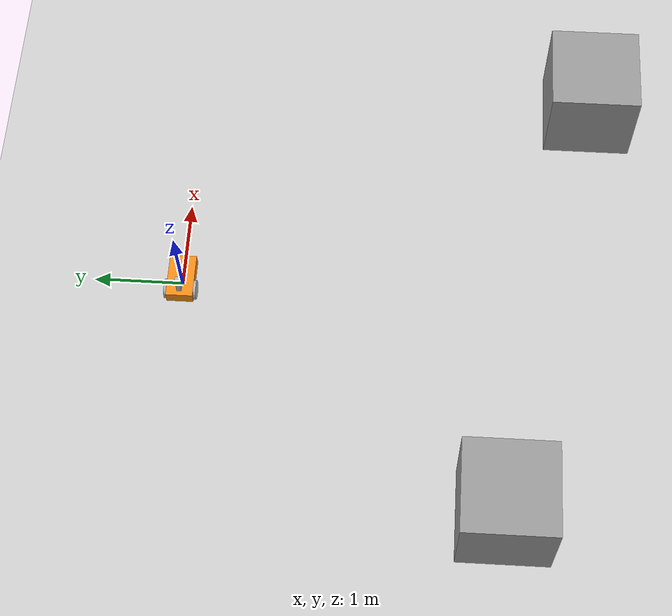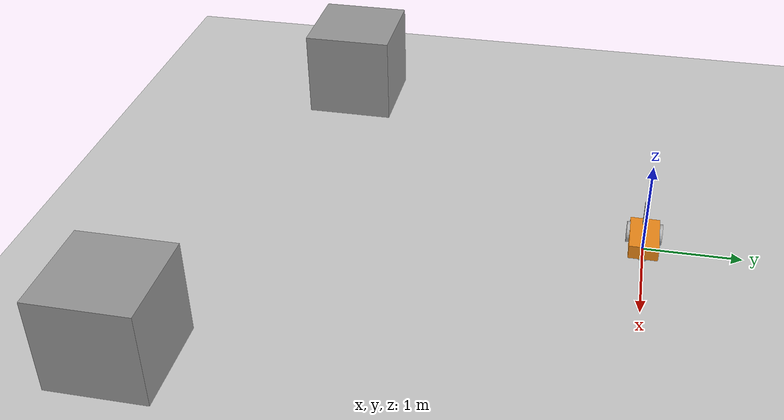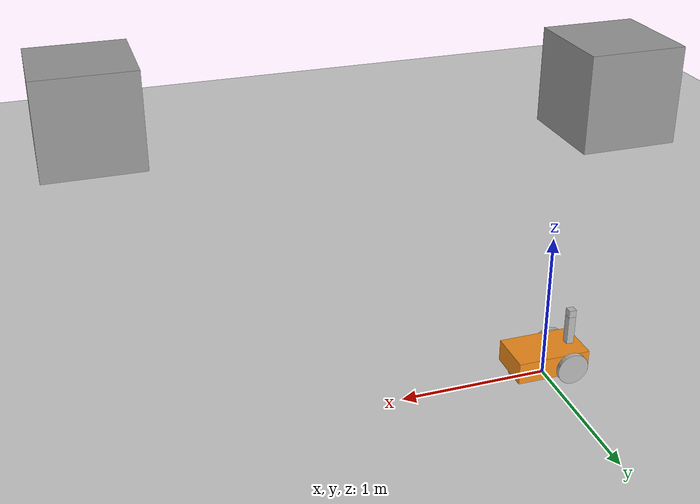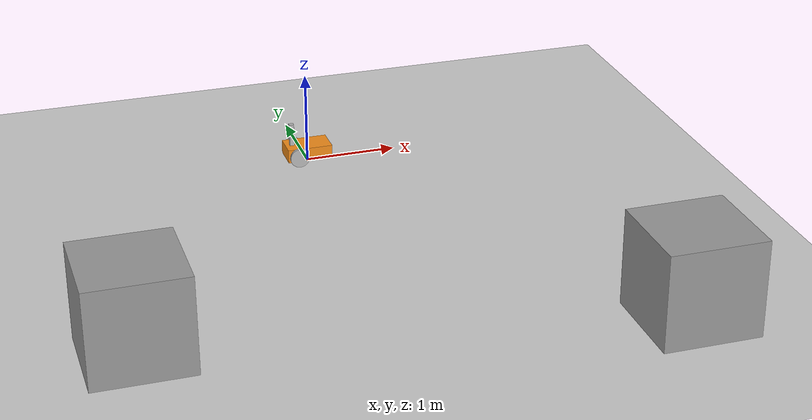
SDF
<sdf version="1.7">
 <world name="race-track-world">
  <model name="race_track">
   <static>1</static>
   <link name="link">
    <collision name="collision">
     <geometry><plane><normal>0 0 1</normal><size>50 50</size></plane></geometry>
     <surface><friction><ode><mu>100</mu><mu2>50</mu2></ode></friction></surface>
    </collision>
    <visual name="visual">
     <cast_shadows>0</cast_shadows>
     <geometry><plane><normal>0 0 1</normal><size>50 50</size></plane></geometry>
     <material>
      <script>
       <uri>model://race_track/materials/scripts</uri>
       <uri>model://race_track/materials/textures</uri>
       <name>race_track/Image</name>
      </script>
     </material>
    </visual>
   </link>
  </model>
  <light name="sun" type="directional">
   <pose>0 0 10 0 -0 0</pose>
   <diffuse>0.8 0.8 0.8 1</diffuse>
   <specular>0.2 0.2 0.2 1</specular>
   <attenuation>
    <range>1000</range>
    <constant>0.9</constant>
    <linear>0.01</linear>
    <quadratic>0.001</quadratic>
   </attenuation>
   <direction>-0.5 0.1 -0.9</direction>
   <spot><inner_angle>0</inner_angle><outer_angle>0</outer_angle><falloff>0</falloff></spot>
  </light>
  <physics name="ode_70iters" type="ode">
   <real_time_update_rate>1500</real_time_update_rate>
   <ode>
    <solver>
     <type>quick</type>
     <iters>70</iters>
     <sor>1.3</sor>
     <use_dynamic_moi_rescaling>0</use_dynamic_moi_rescaling>
    </solver>
    <constraints>
     <cfm>0</cfm>
     <erp>0.2</erp>
     <contact_max_correcting_vel>100</contact_max_correcting_vel>
     <contact_surface_layer>0.001</contact_surface_layer>
    </constraints>
   </ode>
   <max_step_size>0.001</max_step_size>
   <real_time_factor>1</real_time_factor>
  </physics>
  <gravity>0 0 -9.8</gravity>
  <magnetic_field>6e-06 2.3e-05 -4.2e-05</magnetic_field>
  <atmosphere type="adiabatic"/>
  <scene><ambient>0.4 0.4 0.4 1</ambient><background>0.7 0.7 0.7 1</background><shadows>1</shadows></scene>
  <spherical_coordinates>
   <surface_model>EARTH_WGS84</surface_model>
   <latitude_deg>0</latitude_deg>
   <longitude_deg>0</longitude_deg>
   <elevation>0</elevation>
   <heading_deg>0</heading_deg>
  </spherical_coordinates>
  <model name="diff_drive">
   <link name="base_link">
    <inertial>
     <mass>100</mass>
     <inertia>
      <ixx>0.937503</ixx>
      <ixy>0</ixy>
      <ixz>8.3125e-07</ixz>
      <iyy>2.27084</iyy>
      <iyz>0</iyz>
      <izz>2.27084</izz>
     </inertia>
    </inertial>
    <collision name="base_link_fixed_joint_lump__collision_collision">
     <geometry><box><size>0.5 0.3 0.15</size></box></geometry>
    </collision>
    <collision name="base_link_fixed_joint_lump__caster_collision_collision_1">
     <pose>0.19625 0 -0.075 0 -0 0</pose>
     <geometry><sphere><radius>0.05375</radius></sphere></geometry>
    </collision>
    <collision name="base_link_fixed_joint_lump__camera_support_link_collision_2">
     <pose>-0.175 0 0.175 0 -0 0</pose>
     <geometry><box><size>0.05 0.05 0.2</size></box></geometry>
    </collision>
    <collision name="base_link_fixed_joint_lump__camera_link_collision_3">
     <pose>-0.175 0 0.3 0 -0 3.14159</pose>
     <geometry><box><size>0.05 0.05 0.05</size></box></geometry>
    </collision>
    <visual name="base_link_visual_visual">
     <geometry><box><size>0.5 0.3 0.15</size></box></geometry>
     <material>
      <script><name>Gazebo/Orange</name><uri>file://media/materials/scripts/gazebo.material</uri></script>
     </material>
    </visual>
    <visual name="base_link_fixed_joint_lump__caster_visual_visual_1">
     <pose>0.19625 0 -0.075 0 -0 0</pose>
     <geometry><sphere><radius>0.05375</radius></sphere></geometry>
    </visual>
    <visual name="base_link_fixed_joint_lump__camera_support_link_visual_2">
     <pose>-0.175 0 0.175 0 -0 0</pose>
     <geometry><box><size>0.05 0.05 0.2</size></box></geometry>
    </visual>
    <visual name="base_link_fixed_joint_lump__camera_link_visual_3">
     <pose>-0.175 0 0.3 0 -0 3.14159</pose>
     <geometry><box><size>0.05 0.05 0.05</size></box></geometry>
    </visual>
    <sensor name="camera" type="camera">
     <update_rate>15</update_rate>
     <camera name="front">
      <horizontal_fov>1.39626</horizontal_fov>
      <image><width>320</width><height>240</height><format>R8G8B8</format></image>
      <clip><near>0.02</near><far>300</far></clip>
      <noise><type>gaussian</type><mean>0</mean><stddev>0.007</stddev></noise>
     </camera>
     <plugin name="camera_controller" filename="libgazebo_ros_camera.so">
      <alwaysOn>1</alwaysOn>
      <updateRate>0.0</updateRate>
      <cameraName>raspicam_node</cameraName>
      <imageTopicName>image</imageTopicName>
      <cameraInfoTopicName>camera_info</cameraInfoTopicName>
      <frameName>camera_link</frameName>
      <hackBaseline>0.07</hackBaseline>
      <distortionK1>0.0</distortionK1>
      <distortionK2>0.0</distortionK2>
      <distortionK3>0.0</distortionK3>
      <distortionT1>0.0</distortionT1>
      <distortionT2>0.0</distortionT2>
      <robotNamespace>/</robotNamespace>
     </plugin>
     <pose>-0.175 0 0.3 0 -0 3.14159</pose>
    </sensor>
   </link>
   <joint name="left_wheel_hinge" type="revolute">
    <pose relative_to="base_link">-0.125 -0.165 -0.02125 0 -0 0</pose>
    <parent>base_link</parent>
    <child>left_wheel</child>
    <axis>
     <xyz>0 1 0</xyz>
     <limit><effort>10</effort><velocity>15.708</velocity><lower>-1e+16</lower><upper>1e+16</upper></limit>
     <dynamics><spring_reference>0</spring_reference><spring_stiffness>0</spring_stiffness></dynamics>
    </axis>
   </joint>
   <link name="left_wheel">
    <pose relative_to="left_wheel_hinge">0 0 0 0 -0 0</pose>
    <inertial>
     <pose>0 0 0 -0 1.5707 1.5707</pose>
     <mass>50</mass>
     <inertia>
      <ixx>0.148203</ixx>
      <ixy>0</ixy>
      <ixz>0</ixz>
      <iyy>0.148203</iyy>
      <iyz>0</iyz>
      <izz>0.288906</izz>
     </inertia>
    </inertial>
    <collision name="left_wheel_fixed_joint_lump__collision_collision">
     <pose>0 0 0 1.57089 1.57079 -3.14159</pose>
     <geometry><cylinder><length>0.03</length><radius>0.1075</radius></cylinder></geometry>
    </collision>
    <visual name="left_wheel_visual_visual">
     <pose>0 0 0 1.57089 1.57079 -3.14159</pose>
     <geometry><cylinder><length>0.03</length><radius>0.1075</radius></cylinder></geometry>
    </visual>
   </link>
   <joint name="right_wheel_hinge" type="revolute">
    <pose relative_to="base_link">-0.125 0.165 -0.02125 0 -0 0</pose>
    <parent>base_link</parent>
    <child>right_wheel</child>
    <axis>
     <xyz>0 1 0</xyz>
     <limit><effort>10</effort><velocity>15.708</velocity><lower>-1e+16</lower><upper>1e+16</upper></limit>
     <dynamics><spring_reference>0</spring_reference><spring_stiffness>0</spring_stiffness></dynamics>
    </axis>
   </joint>
   <link name="right_wheel">
    <pose relative_to="right_wheel_hinge">0 0 0 0 -0 0</pose>
    <inertial>
     <pose>0 0 0 -0 1.5707 1.5707</pose>
     <mass>50</mass>
     <inertia>
      <ixx>0.148203</ixx>
      <ixy>0</ixy>
      <ixz>0</ixz>
      <iyy>0.148203</iyy>
      <iyz>0</iyz>
      <izz>0.288906</izz>
     </inertia>
    </inertial>
    <collision name="right_wheel_fixed_joint_lump__collision_collision">
     <pose>0 0 0 1.57089 1.57079 -3.14159</pose>
     <geometry><cylinder><length>0.03</length><radius>0.1075</radius></cylinder></geometry>
    </collision>
    <visual name="right_wheel_visual_visual">
     <pose>0 0 0 1.57089 1.57079 -3.14159</pose>
     <geometry><cylinder><length>0.03</length><radius>0.1075</radius></cylinder></geometry>
    </visual>
   </link>
   <plugin name="differential_drive_controller" filename="libgazebo_ros_diff_drive.so">
    <alwaysOn>1</alwaysOn>
    <updateRate>15</updateRate>
    <leftJoint>left_wheel_hinge</leftJoint>
    <rightJoint>right_wheel_hinge</rightJoint>
    <wheelSeparation>0.3576</wheelSeparation>
    <wheelDiameter>0.215</wheelDiameter>
    <wheelTorque>1400</wheelTorque>
    <wheelAcceleration>0</wheelAcceleration>
    <commandTopic>cmd_vel</commandTopic>
    <odometryTopic>odom</odometryTopic>
    <odometryFrame>world_frame</odometryFrame>
    <odometrySource>world</odometrySource>
    <robotBaseFrame>base_link</robotBaseFrame>
    <publishWheelJointState>1</publishWheelJointState>
    <publishWheelTF>1</publishWheelTF>
    <legacyMode>0</legacyMode>
    <robotNamespace>/</robotNamespace>
   </plugin>
   <plugin name="imu_plugin" filename="libgazebo_ros_imu.so">
    <alwaysOn>1</alwaysOn>
    <bodyName>base_link</bodyName>
    <topicName>imu</topicName>
    <serviceName>imu_service</serviceName>
    <gaussianNoise>0.1</gaussianNoise>
    <updateRate>20.0</updateRate>
    <robotNamespace>/</robotNamespace>
   </plugin>
   <static>0</static>
   <plugin name="gps_plugin" filename="libhector_gazebo_ros_gps.so">
    <alwaysOn>1</alwaysOn>
    <updateRate>10.0</updateRate>
    <bodyName>base_link</bodyName>
    <topicName>test</topicName>
    <velocityTopicName>fix_velocity</velocityTopicName>
    <drift>5.0 5.0 5.0</drift>
    <gaussianNoise>0.1 0.1 0.1</gaussianNoise>
    <velocityDrift>0 0 0</velocityDrift>
    <velocityGaussianNoise>0.1 0.1 0.1</velocityGaussianNoise>
    <robotNamespace>/</robotNamespace>
   </plugin>
   <pose>-0.000151 -0.000277 0.12875 0 0 -0.000144</pose>
  </model>
  <model name="unit_box">
   <pose>-2.56966 -3.65324 0.5 0 -0 0</pose>
   <link name="link">
    <inertial>
     <mass>1</mass>
     <inertia>
      <ixx>0.166667</ixx>
      <ixy>0</ixy>
      <ixz>0</ixz>
      <iyy>0.166667</iyy>
      <iyz>0</iyz>
      <izz>0.166667</izz>
     </inertia>
    </inertial>
    <collision name="collision"><geometry><box><size>1 1 1</size></box></geometry></collision>
    <visual name="visual">
     <geometry><box><size>1 1 1</size></box></geometry>
     <material>
      <script><name>Gazebo/Grey</name><uri>file://media/materials/scripts/gazebo.material</uri></script>
     </material>
    </visual>
   </link>
  </model>
  <model name="unit_box_0">
   <pose>2.52228 -4.58701 0.5 0 -0 0</pose>
   <link name="link">
    <inertial>
     <mass>1</mass>
     <inertia>
      <ixx>0.166667</ixx>
      <ixy>0</ixy>
      <ixz>0</ixz>
      <iyy>0.166667</iyy>
      <iyz>0</iyz>
      <izz>0.166667</izz>
     </inertia>
    </inertial>
    <collision name="collision"><geometry><box><size>1 1 1</size></box></geometry></collision>
    <visual name="visual">
     <geometry><box><size>1 1 1</size></box></geometry>
     <material>
      <script><name>Gazebo/Grey</name><uri>file://media/materials/scripts/gazebo.material</uri></script>
     </material>
    </visual>
   </link>
  </model>
 </world>
</sdf>
